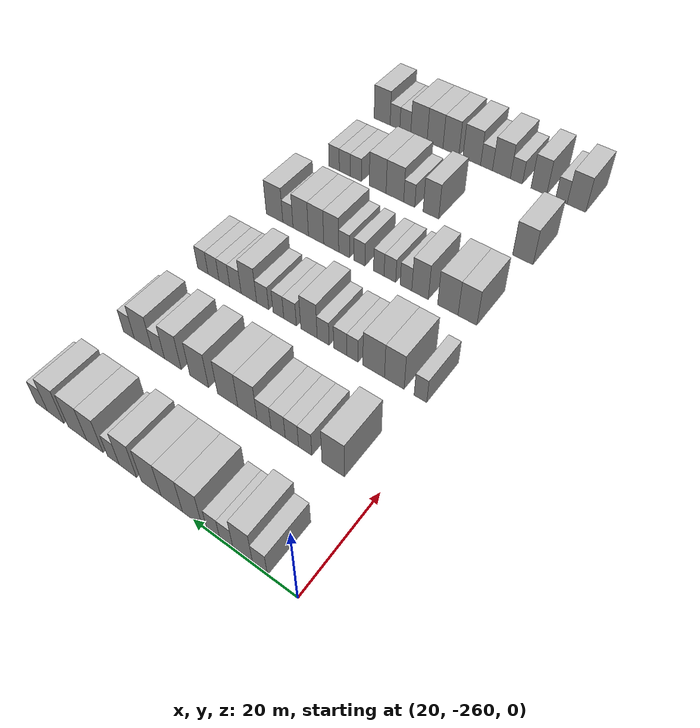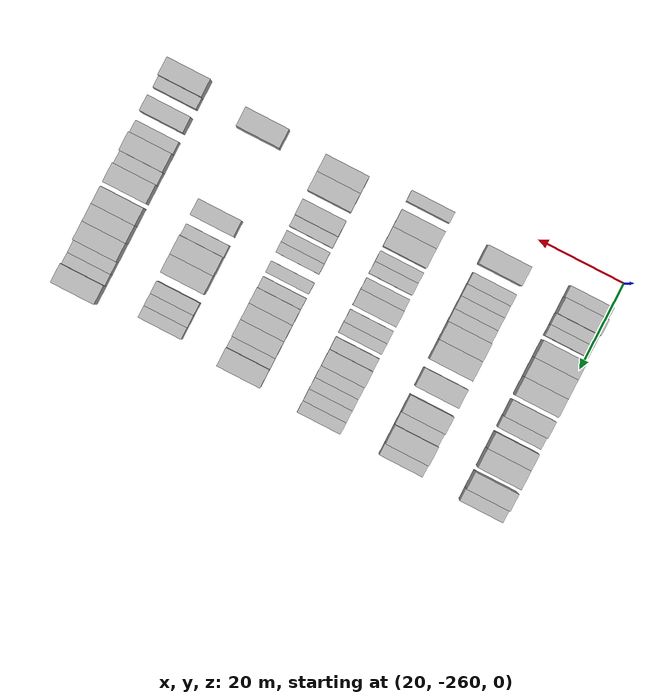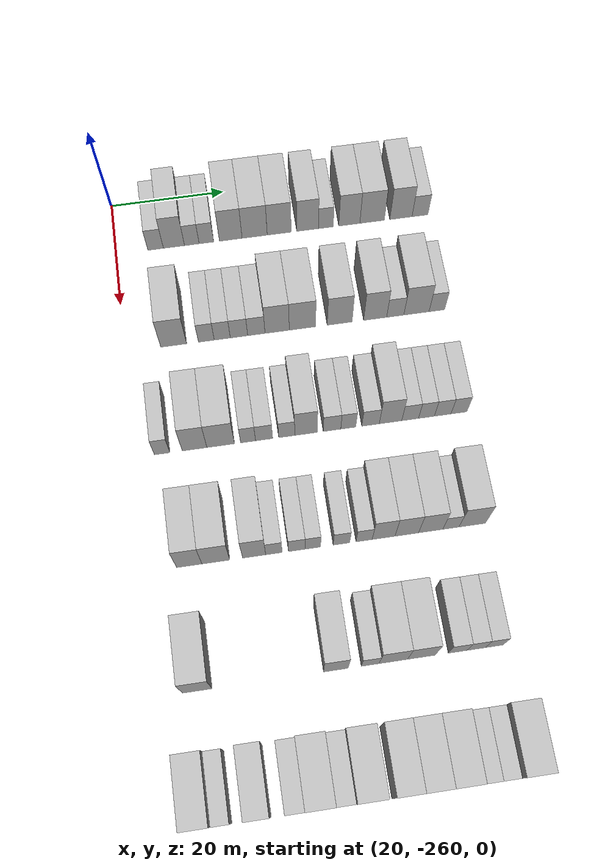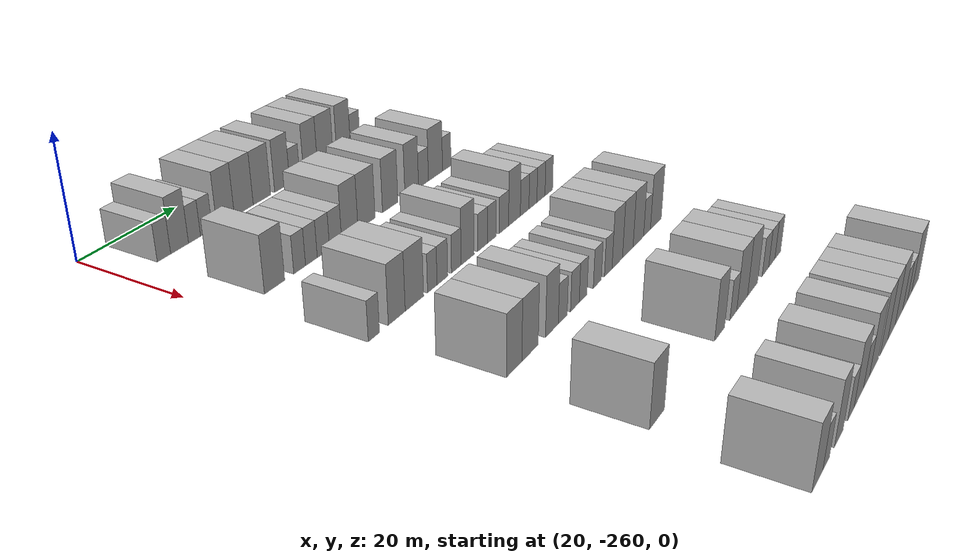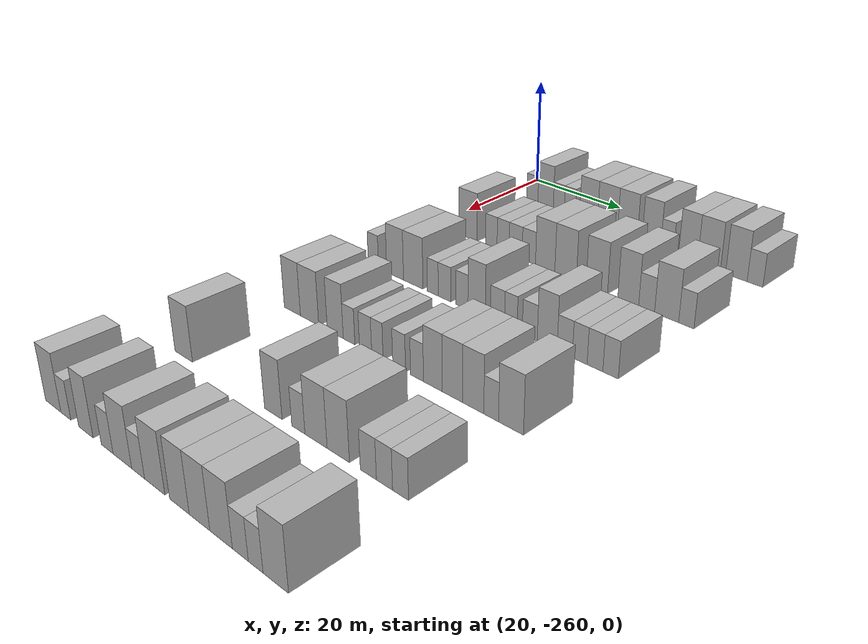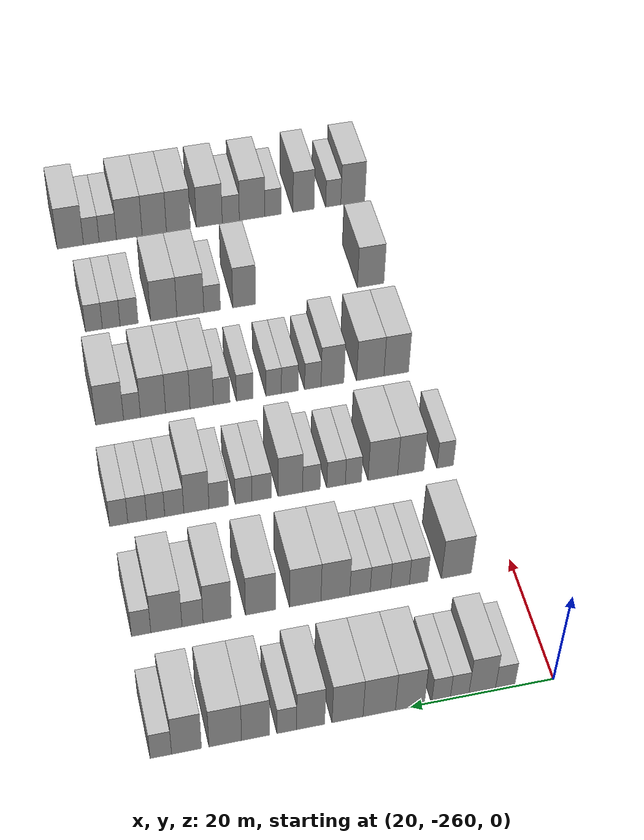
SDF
<sdf version="1.6">
 <world name="default">
  <model name="building_26">
   <static>1</static>
   <pose>25.0000 -253.0613 0 0.000000 0.000000 0.000000</pose>
   <link name="link">
    <pose>0 0 3.00 0 0 0</pose>
    <collision name="collision"><geometry><box><size>10.0000 2.7201 6.0000</size></box></geometry></collision>
    <visual name="visual">
     <cast_shadows>0</cast_shadows>
     <geometry><box><size>10.0000 2.7201 6.0000</size></box></geometry>
     <material>
      <script>
       <uri>model://HANNAS_wall/materials/scripts</uri>
       <uri>model://HANNAS_wall/materials/textures</uri>
       <name>vrc/HANNAS_wall</name>
      </script>
     </material>
    </visual>
   </link>
  </model>
  <model name="building_27">
   <static>1</static>
   <pose>25.0000 -249.8507 0 0.000000 0.000000 0.000000</pose>
   <link name="link">
    <pose>0 0 4.50 0 0 0</pose>
    <collision name="collision"><geometry><box><size>10.0000 3.7010 9.0000</size></box></geometry></collision>
    <visual name="visual">
     <cast_shadows>0</cast_shadows>
     <geometry><box><size>10.0000 3.7010 9.0000</size></box></geometry>
     <material>
      <script>
       <uri>model://HANNAS_wall/materials/scripts</uri>
       <uri>model://HANNAS_wall/materials/textures</uri>
       <name>vrc/HANNAS_wall</name>
      </script>
     </material>
    </visual>
   </link>
  </model>
  <model name="building_28">
   <static>1</static>
   <pose>25.0000 -246.7111 0 0.000000 0.000000 0.000000</pose>
   <link name="link">
    <pose>0 0 3.00 0 0 0</pose>
    <collision name="collision"><geometry><box><size>10.0000 2.5782 6.0000</size></box></geometry></collision>
    <visual name="visual">
     <cast_shadows>0</cast_shadows>
     <geometry><box><size>10.0000 2.5782 6.0000</size></box></geometry>
     <material>
      <script>
       <uri>model://HANNAS_wall/materials/scripts</uri>
       <uri>model://HANNAS_wall/materials/textures</uri>
       <name>vrc/HANNAS_wall</name>
      </script>
     </material>
    </visual>
   </link>
  </model>
  <model name="building_29">
   <static>1</static>
   <pose>25.0000 -244.1394 0 0.000000 0.000000 0.000000</pose>
   <link name="link">
    <pose>0 0 3.00 0 0 0</pose>
    <collision name="collision"><geometry><box><size>10.0000 2.5652 6.0000</size></box></geometry></collision>
    <visual name="visual">
     <cast_shadows>0</cast_shadows>
     <geometry><box><size>10.0000 2.5652 6.0000</size></box></geometry>
     <material>
      <script>
       <uri>model://HANNAS_wall/materials/scripts</uri>
       <uri>model://HANNAS_wall/materials/textures</uri>
       <name>vrc/HANNAS_wall</name>
      </script>
     </material>
    </visual>
   </link>
  </model>
  <model name="building_30">
   <static>1</static>
   <pose>25.0000 -239.8567 0 0.000000 0.000000 0.000000</pose>
   <link name="link">
    <pose>0 0 4.50 0 0 0</pose>
    <collision name="collision"><geometry><box><size>10.0000 4.0002 9.0000</size></box></geometry></collision>
    <visual name="visual">
     <cast_shadows>0</cast_shadows>
     <geometry><box><size>10.0000 4.0002 9.0000</size></box></geometry>
     <material>
      <script>
       <uri>model://HANNAS_wall/materials/scripts</uri>
       <uri>model://HANNAS_wall/materials/textures</uri>
       <name>vrc/HANNAS_wall</name>
      </script>
     </material>
    </visual>
   </link>
  </model>
  <model name="building_31">
   <static>1</static>
   <pose>25.0000 -235.6305 0 0.000000 0.000000 0.000000</pose>
   <link name="link">
    <pose>0 0 4.50 0 0 0</pose>
    <collision name="collision"><geometry><box><size>10.0000 4.4523 9.0000</size></box></geometry></collision>
    <visual name="visual">
     <cast_shadows>0</cast_shadows>
     <geometry><box><size>10.0000 4.4523 9.0000</size></box></geometry>
     <material>
      <script>
       <uri>model://HANNAS_wall/materials/scripts</uri>
       <uri>model://HANNAS_wall/materials/textures</uri>
       <name>vrc/HANNAS_wall</name>
      </script>
     </material>
    </visual>
   </link>
  </model>
  <model name="building_32">
   <static>1</static>
   <pose>25.0000 -231.2841 0 0.000000 0.000000 0.000000</pose>
   <link name="link">
    <pose>0 0 4.50 0 0 0</pose>
    <collision name="collision"><geometry><box><size>10.0000 4.2404 9.0000</size></box></geometry></collision>
    <visual name="visual">
     <cast_shadows>0</cast_shadows>
     <geometry><box><size>10.0000 4.2404 9.0000</size></box></geometry>
     <material>
      <script>
       <uri>model://HANNAS_wall/materials/scripts</uri>
       <uri>model://HANNAS_wall/materials/textures</uri>
       <name>vrc/HANNAS_wall</name>
      </script>
     </material>
    </visual>
   </link>
  </model>
  <model name="building_33">
   <static>1</static>
   <pose>25.0000 -226.2432 0 0.000000 0.000000 0.000000</pose>
   <link name="link">
    <pose>0 0 4.50 0 0 0</pose>
    <collision name="collision"><geometry><box><size>10.0000 3.8416 9.0000</size></box></geometry></collision>
    <visual name="visual">
     <cast_shadows>0</cast_shadows>
     <geometry><box><size>10.0000 3.8416 9.0000</size></box></geometry>
     <material>
      <script>
       <uri>model://HANNAS_wall/materials/scripts</uri>
       <uri>model://HANNAS_wall/materials/textures</uri>
       <name>vrc/HANNAS_wall</name>
      </script>
     </material>
    </visual>
   </link>
  </model>
  <model name="building_34">
   <static>1</static>
   <pose>25.0000 -223.0038 0 0.000000 0.000000 0.000000</pose>
   <link name="link">
    <pose>0 0 3.00 0 0 0</pose>
    <collision name="collision"><geometry><box><size>10.0000 2.6371 6.0000</size></box></geometry></collision>
    <visual name="visual">
     <cast_shadows>0</cast_shadows>
     <geometry><box><size>10.0000 2.6371 6.0000</size></box></geometry>
     <material>
      <script>
       <uri>model://HANNAS_wall/materials/scripts</uri>
       <uri>model://HANNAS_wall/materials/textures</uri>
       <name>vrc/HANNAS_wall</name>
      </script>
     </material>
    </visual>
   </link>
  </model>
  <model name="building_35">
   <static>1</static>
   <pose>25.0000 -218.8043 0 0.000000 0.000000 0.000000</pose>
   <link name="link">
    <pose>0 0 4.50 0 0 0</pose>
    <collision name="collision"><geometry><box><size>10.0000 3.7618 9.0000</size></box></geometry></collision>
    <visual name="visual">
     <cast_shadows>0</cast_shadows>
     <geometry><box><size>10.0000 3.7618 9.0000</size></box></geometry>
     <material>
      <script>
       <uri>model://HANNAS_wall/materials/scripts</uri>
       <uri>model://HANNAS_wall/materials/textures</uri>
       <name>vrc/HANNAS_wall</name>
      </script>
     </material>
    </visual>
   </link>
  </model>
  <model name="building_36">
   <static>1</static>
   <pose>25.0000 -214.7359 0 0.000000 0.000000 0.000000</pose>
   <link name="link">
    <pose>0 0 4.50 0 0 0</pose>
    <collision name="collision"><geometry><box><size>10.0000 4.3752 9.0000</size></box></geometry></collision>
    <visual name="visual">
     <cast_shadows>0</cast_shadows>
     <geometry><box><size>10.0000 4.3752 9.0000</size></box></geometry>
     <material>
      <script>
       <uri>model://HANNAS_wall/materials/scripts</uri>
       <uri>model://HANNAS_wall/materials/textures</uri>
       <name>vrc/HANNAS_wall</name>
      </script>
     </material>
    </visual>
   </link>
  </model>
  <model name="building_37">
   <static>1</static>
   <pose>25.0000 -209.5560 0 0.000000 0.000000 0.000000</pose>
   <link name="link">
    <pose>0 0 4.50 0 0 0</pose>
    <collision name="collision"><geometry><box><size>10.0000 3.9845 9.0000</size></box></geometry></collision>
    <visual name="visual">
     <cast_shadows>0</cast_shadows>
     <geometry><box><size>10.0000 3.9845 9.0000</size></box></geometry>
     <material>
      <script>
       <uri>model://HANNAS_wall/materials/scripts</uri>
       <uri>model://HANNAS_wall/materials/textures</uri>
       <name>vrc/HANNAS_wall</name>
      </script>
     </material>
    </visual>
   </link>
  </model>
  <model name="building_38">
   <static>1</static>
   <pose>25.0000 -206.1388 0 0.000000 0.000000 0.000000</pose>
   <link name="link">
    <pose>0 0 3.00 0 0 0</pose>
    <collision name="collision"><geometry><box><size>10.0000 2.8499 6.0000</size></box></geometry></collision>
    <visual name="visual">
     <cast_shadows>0</cast_shadows>
     <geometry><box><size>10.0000 2.8499 6.0000</size></box></geometry>
     <material>
      <script>
       <uri>model://HANNAS_wall/materials/scripts</uri>
       <uri>model://HANNAS_wall/materials/textures</uri>
       <name>vrc/HANNAS_wall</name>
      </script>
     </material>
    </visual>
   </link>
  </model>
  <model name="building_193">
   <static>1</static>
   <pose>44.0000 -251.8077 0 0.000000 0.000000 0.000000</pose>
   <link name="link">
    <pose>0 0 4.50 0 0 0</pose>
    <collision name="collision"><geometry><box><size>10.0000 4.3728 9.0000</size></box></geometry></collision>
    <visual name="visual">
     <cast_shadows>0</cast_shadows>
     <geometry><box><size>10.0000 4.3728 9.0000</size></box></geometry>
     <material>
      <script>
       <uri>model://HANNAS_wall/materials/scripts</uri>
       <uri>model://HANNAS_wall/materials/textures</uri>
       <name>vrc/HANNAS_wall</name>
      </script>
     </material>
    </visual>
   </link>
  </model>
  <model name="building_194">
   <static>1</static>
   <pose>44.0000 -246.2846 0 0.000000 0.000000 0.000000</pose>
   <link name="link">
    <pose>0 0 3.00 0 0 0</pose>
    <collision name="collision"><geometry><box><size>10.0000 2.6734 6.0000</size></box></geometry></collision>
    <visual name="visual">
     <cast_shadows>0</cast_shadows>
     <geometry><box><size>10.0000 2.6734 6.0000</size></box></geometry>
     <material>
      <script>
       <uri>model://HANNAS_wall/materials/scripts</uri>
       <uri>model://HANNAS_wall/materials/textures</uri>
       <name>vrc/HANNAS_wall</name>
      </script>
     </material>
    </visual>
   </link>
  </model>
  <model name="building_195">
   <static>1</static>
   <pose>44.0000 -243.5870 0 0.000000 0.000000 0.000000</pose>
   <link name="link">
    <pose>0 0 3.00 0 0 0</pose>
    <collision name="collision"><geometry><box><size>10.0000 2.7219 6.0000</size></box></geometry></collision>
    <visual name="visual">
     <cast_shadows>0</cast_shadows>
     <geometry><box><size>10.0000 2.7219 6.0000</size></box></geometry>
     <material>
      <script>
       <uri>model://HANNAS_wall/materials/scripts</uri>
       <uri>model://HANNAS_wall/materials/textures</uri>
       <name>vrc/HANNAS_wall</name>
      </script>
     </material>
    </visual>
   </link>
  </model>
  <model name="building_196">
   <static>1</static>
   <pose>44.0000 -240.7536 0 0.000000 0.000000 0.000000</pose>
   <link name="link">
    <pose>0 0 3.00 0 0 0</pose>
    <collision name="collision"><geometry><box><size>10.0000 2.9448 6.0000</size></box></geometry></collision>
    <visual name="visual">
     <cast_shadows>0</cast_shadows>
     <geometry><box><size>10.0000 2.9448 6.0000</size></box></geometry>
     <material>
      <script>
       <uri>model://HANNAS_wall/materials/scripts</uri>
       <uri>model://HANNAS_wall/materials/textures</uri>
       <name>vrc/HANNAS_wall</name>
      </script>
     </material>
    </visual>
   </link>
  </model>
  <model name="building_197">
   <static>1</static>
   <pose>44.0000 -237.8079 0 0.000000 0.000000 0.000000</pose>
   <link name="link">
    <pose>0 0 3.00 0 0 0</pose>
    <collision name="collision"><geometry><box><size>10.0000 2.9467 6.0000</size></box></geometry></collision>
    <visual name="visual">
     <cast_shadows>0</cast_shadows>
     <geometry><box><size>10.0000 2.9467 6.0000</size></box></geometry>
     <material>
      <script>
       <uri>model://HANNAS_wall/materials/scripts</uri>
       <uri>model://HANNAS_wall/materials/textures</uri>
       <name>vrc/HANNAS_wall</name>
      </script>
     </material>
    </visual>
   </link>
  </model>
  <model name="building_198">
   <static>1</static>
   <pose>44.0000 -234.2628 0 0.000000 0.000000 0.000000</pose>
   <link name="link">
    <pose>0 0 4.50 0 0 0</pose>
    <collision name="collision"><geometry><box><size>10.0000 4.1434 9.0000</size></box></geometry></collision>
    <visual name="visual">
     <cast_shadows>0</cast_shadows>
     <geometry><box><size>10.0000 4.1434 9.0000</size></box></geometry>
     <material>
      <script>
       <uri>model://HANNAS_wall/materials/scripts</uri>
       <uri>model://HANNAS_wall/materials/textures</uri>
       <name>vrc/HANNAS_wall</name>
      </script>
     </material>
    </visual>
   </link>
  </model>
  <model name="building_199">
   <static>1</static>
   <pose>44.0000 -229.9495 0 0.000000 0.000000 0.000000</pose>
   <link name="link">
    <pose>0 0 4.50 0 0 0</pose>
    <collision name="collision"><geometry><box><size>10.0000 4.4833 9.0000</size></box></geometry></collision>
    <visual name="visual">
     <cast_shadows>0</cast_shadows>
     <geometry><box><size>10.0000 4.4833 9.0000</size></box></geometry>
     <material>
      <script>
       <uri>model://HANNAS_wall/materials/scripts</uri>
       <uri>model://HANNAS_wall/materials/textures</uri>
       <name>vrc/HANNAS_wall</name>
      </script>
     </material>
    </visual>
   </link>
  </model>
  <model name="building_200">
   <static>1</static>
   <pose>44.0000 -223.5775 0 0.000000 0.000000 0.000000</pose>
   <link name="link">
    <pose>0 0 4.50 0 0 0</pose>
    <collision name="collision"><geometry><box><size>10.0000 4.2605 9.0000</size></box></geometry></collision>
    <visual name="visual">
     <cast_shadows>0</cast_shadows>
     <geometry><box><size>10.0000 4.2605 9.0000</size></box></geometry>
     <material>
      <script>
       <uri>model://HANNAS_wall/materials/scripts</uri>
       <uri>model://HANNAS_wall/materials/textures</uri>
       <name>vrc/HANNAS_wall</name>
      </script>
     </material>
    </visual>
   </link>
  </model>
  <model name="building_201">
   <static>1</static>
   <pose>44.0000 -217.4639 0 0.000000 0.000000 0.000000</pose>
   <link name="link">
    <pose>0 0 4.50 0 0 0</pose>
    <collision name="collision"><geometry><box><size>10.0000 3.9667 9.0000</size></box></geometry></collision>
    <visual name="visual">
     <cast_shadows>0</cast_shadows>
     <geometry><box><size>10.0000 3.9667 9.0000</size></box></geometry>
     <material>
      <script>
       <uri>model://HANNAS_wall/materials/scripts</uri>
       <uri>model://HANNAS_wall/materials/textures</uri>
       <name>vrc/HANNAS_wall</name>
      </script>
     </material>
    </visual>
   </link>
  </model>
  <model name="building_202">
   <static>1</static>
   <pose>44.0000 -213.9979 0 0.000000 0.000000 0.000000</pose>
   <link name="link">
    <pose>0 0 3.00 0 0 0</pose>
    <collision name="collision"><geometry><box><size>10.0000 2.9653 6.0000</size></box></geometry></collision>
    <visual name="visual">
     <cast_shadows>0</cast_shadows>
     <geometry><box><size>10.0000 2.9653 6.0000</size></box></geometry>
     <material>
      <script>
       <uri>model://HANNAS_wall/materials/scripts</uri>
       <uri>model://HANNAS_wall/materials/textures</uri>
       <name>vrc/HANNAS_wall</name>
      </script>
     </material>
    </visual>
   </link>
  </model>
  <model name="building_203">
   <static>1</static>
   <pose>44.0000 -210.3401 0 0.000000 0.000000 0.000000</pose>
   <link name="link">
    <pose>0 0 4.50 0 0 0</pose>
    <collision name="collision"><geometry><box><size>10.0000 4.3504 9.0000</size></box></geometry></collision>
    <visual name="visual">
     <cast_shadows>0</cast_shadows>
     <geometry><box><size>10.0000 4.3504 9.0000</size></box></geometry>
     <material>
      <script>
       <uri>model://HANNAS_wall/materials/scripts</uri>
       <uri>model://HANNAS_wall/materials/textures</uri>
       <name>vrc/HANNAS_wall</name>
      </script>
     </material>
    </visual>
   </link>
  </model>
  <model name="building_204">
   <static>1</static>
   <pose>44.0000 -206.8149 0 0.000000 0.000000 0.000000</pose>
   <link name="link">
    <pose>0 0 3.00 0 0 0</pose>
    <collision name="collision"><geometry><box><size>10.0000 2.6998 6.0000</size></box></geometry></collision>
    <visual name="visual">
     <cast_shadows>0</cast_shadows>
     <geometry><box><size>10.0000 2.6998 6.0000</size></box></geometry>
     <material>
      <script>
       <uri>model://HANNAS_wall/materials/scripts</uri>
       <uri>model://HANNAS_wall/materials/textures</uri>
       <name>vrc/HANNAS_wall</name>
      </script>
     </material>
    </visual>
   </link>
  </model>
  <model name="building_365">
   <static>1</static>
   <pose>63.0000 -255.5866 0 0.000000 0.000000 0.000000</pose>
   <link name="link">
    <pose>0 0 3.00 0 0 0</pose>
    <collision name="collision"><geometry><box><size>10.0000 2.5113 6.0000</size></box></geometry></collision>
    <visual name="visual">
     <cast_shadows>0</cast_shadows>
     <geometry><box><size>10.0000 2.5113 6.0000</size></box></geometry>
     <material>
      <script>
       <uri>model://HANNAS_wall/materials/scripts</uri>
       <uri>model://HANNAS_wall/materials/textures</uri>
       <name>vrc/HANNAS_wall</name>
      </script>
     </material>
    </visual>
   </link>
  </model>
  <model name="building_366">
   <static>1</static>
   <pose>63.0000 -250.3341 0 0.000000 0.000000 0.000000</pose>
   <link name="link">
    <pose>0 0 4.50 0 0 0</pose>
    <collision name="collision"><geometry><box><size>10.0000 3.9937 9.0000</size></box></geometry></collision>
    <visual name="visual">
     <cast_shadows>0</cast_shadows>
     <geometry><box><size>10.0000 3.9937 9.0000</size></box></geometry>
     <material>
      <script>
       <uri>model://HANNAS_wall/materials/scripts</uri>
       <uri>model://HANNAS_wall/materials/textures</uri>
       <name>vrc/HANNAS_wall</name>
      </script>
     </material>
    </visual>
   </link>
  </model>
  <model name="building_367">
   <static>1</static>
   <pose>63.0000 -246.0889 0 0.000000 0.000000 0.000000</pose>
   <link name="link">
    <pose>0 0 4.50 0 0 0</pose>
    <collision name="collision"><geometry><box><size>10.0000 4.4967 9.0000</size></box></geometry></collision>
    <visual name="visual">
     <cast_shadows>0</cast_shadows>
     <geometry><box><size>10.0000 4.4967 9.0000</size></box></geometry>
     <material>
      <script>
       <uri>model://HANNAS_wall/materials/scripts</uri>
       <uri>model://HANNAS_wall/materials/textures</uri>
       <name>vrc/HANNAS_wall</name>
      </script>
     </material>
    </visual>
   </link>
  </model>
  <model name="building_368">
   <static>1</static>
   <pose>63.0000 -241.6227 0 0.000000 0.000000 0.000000</pose>
   <link name="link">
    <pose>0 0 3.00 0 0 0</pose>
    <collision name="collision"><geometry><box><size>10.0000 2.4357 6.0000</size></box></geometry></collision>
    <visual name="visual">
     <cast_shadows>0</cast_shadows>
     <geometry><box><size>10.0000 2.4357 6.0000</size></box></geometry>
     <material>
      <script>
       <uri>model://HANNAS_wall/materials/scripts</uri>
       <uri>model://HANNAS_wall/materials/textures</uri>
       <name>vrc/HANNAS_wall</name>
      </script>
     </material>
    </visual>
   </link>
  </model>
  <model name="building_369">
   <static>1</static>
   <pose>63.0000 -239.0105 0 0.000000 0.000000 0.000000</pose>
   <link name="link">
    <pose>0 0 3.00 0 0 0</pose>
    <collision name="collision"><geometry><box><size>10.0000 2.7888 6.0000</size></box></geometry></collision>
    <visual name="visual">
     <cast_shadows>0</cast_shadows>
     <geometry><box><size>10.0000 2.7888 6.0000</size></box></geometry>
     <material>
      <script>
       <uri>model://HANNAS_wall/materials/scripts</uri>
       <uri>model://HANNAS_wall/materials/textures</uri>
       <name>vrc/HANNAS_wall</name>
      </script>
     </material>
    </visual>
   </link>
  </model>
  <model name="building_370">
   <static>1</static>
   <pose>63.0000 -235.3000 0 0.000000 0.000000 0.000000</pose>
   <link name="link">
    <pose>0 0 3.00 0 0 0</pose>
    <collision name="collision"><geometry><box><size>10.0000 2.6323 6.0000</size></box></geometry></collision>
    <visual name="visual">
     <cast_shadows>0</cast_shadows>
     <geometry><box><size>10.0000 2.6323 6.0000</size></box></geometry>
     <material>
      <script>
       <uri>model://HANNAS_wall/materials/scripts</uri>
       <uri>model://HANNAS_wall/materials/textures</uri>
       <name>vrc/HANNAS_wall</name>
      </script>
     </material>
    </visual>
   </link>
  </model>
  <model name="building_371">
   <static>1</static>
   <pose>63.0000 -232.1525 0 0.000000 0.000000 0.000000</pose>
   <link name="link">
    <pose>0 0 4.50 0 0 0</pose>
    <collision name="collision"><geometry><box><size>10.0000 3.6627 9.0000</size></box></geometry></collision>
    <visual name="visual">
     <cast_shadows>0</cast_shadows>
     <geometry><box><size>10.0000 3.6627 9.0000</size></box></geometry>
     <material>
      <script>
       <uri>model://HANNAS_wall/materials/scripts</uri>
       <uri>model://HANNAS_wall/materials/textures</uri>
       <name>vrc/HANNAS_wall</name>
      </script>
     </material>
    </visual>
   </link>
  </model>
  <model name="building_372">
   <static>1</static>
   <pose>63.0000 -227.8747 0 0.000000 0.000000 0.000000</pose>
   <link name="link">
    <pose>0 0 3.00 0 0 0</pose>
    <collision name="collision"><geometry><box><size>10.0000 2.8930 6.0000</size></box></geometry></collision>
    <visual name="visual">
     <cast_shadows>0</cast_shadows>
     <geometry><box><size>10.0000 2.8930 6.0000</size></box></geometry>
     <material>
      <script>
       <uri>model://HANNAS_wall/materials/scripts</uri>
       <uri>model://HANNAS_wall/materials/textures</uri>
       <name>vrc/HANNAS_wall</name>
      </script>
     </material>
    </visual>
   </link>
  </model>
  <model name="building_373">
   <static>1</static>
   <pose>63.0000 -225.1931 0 0.000000 0.000000 0.000000</pose>
   <link name="link">
    <pose>0 0 3.00 0 0 0</pose>
    <collision name="collision"><geometry><box><size>10.0000 2.4701 6.0000</size></box></geometry></collision>
    <visual name="visual">
     <cast_shadows>0</cast_shadows>
     <geometry><box><size>10.0000 2.4701 6.0000</size></box></geometry>
     <material>
      <script>
       <uri>model://HANNAS_wall/materials/scripts</uri>
       <uri>model://HANNAS_wall/materials/textures</uri>
       <name>vrc/HANNAS_wall</name>
      </script>
     </material>
    </visual>
   </link>
  </model>
  <model name="building_374">
   <static>1</static>
   <pose>63.0000 -221.5161 0 0.000000 0.000000 0.000000</pose>
   <link name="link">
    <pose>0 0 3.00 0 0 0</pose>
    <collision name="collision"><geometry><box><size>10.0000 2.8840 6.0000</size></box></geometry></collision>
    <visual name="visual">
     <cast_shadows>0</cast_shadows>
     <geometry><box><size>10.0000 2.8840 6.0000</size></box></geometry>
     <material>
      <script>
       <uri>model://HANNAS_wall/materials/scripts</uri>
       <uri>model://HANNAS_wall/materials/textures</uri>
       <name>vrc/HANNAS_wall</name>
      </script>
     </material>
    </visual>
   </link>
  </model>
  <model name="building_375">
   <static>1</static>
   <pose>63.0000 -218.2141 0 0.000000 0.000000 0.000000</pose>
   <link name="link">
    <pose>0 0 4.50 0 0 0</pose>
    <collision name="collision"><geometry><box><size>10.0000 3.7201 9.0000</size></box></geometry></collision>
    <visual name="visual">
     <cast_shadows>0</cast_shadows>
     <geometry><box><size>10.0000 3.7201 9.0000</size></box></geometry>
     <material>
      <script>
       <uri>model://HANNAS_wall/materials/scripts</uri>
       <uri>model://HANNAS_wall/materials/textures</uri>
       <name>vrc/HANNAS_wall</name>
      </script>
     </material>
    </visual>
   </link>
  </model>
  <model name="building_376">
   <static>1</static>
   <pose>63.0000 -214.9569 0 0.000000 0.000000 0.000000</pose>
   <link name="link">
    <pose>0 0 3.00 0 0 0</pose>
    <collision name="collision"><geometry><box><size>10.0000 2.7943 6.0000</size></box></geometry></collision>
    <visual name="visual">
     <cast_shadows>0</cast_shadows>
     <geometry><box><size>10.0000 2.7943 6.0000</size></box></geometry>
     <material>
      <script>
       <uri>model://HANNAS_wall/materials/scripts</uri>
       <uri>model://HANNAS_wall/materials/textures</uri>
       <name>vrc/HANNAS_wall</name>
      </script>
     </material>
    </visual>
   </link>
  </model>
  <model name="building_377">
   <static>1</static>
   <pose>63.0000 -212.2376 0 0.000000 0.000000 0.000000</pose>
   <link name="link">
    <pose>0 0 3.00 0 0 0</pose>
    <collision name="collision"><geometry><box><size>10.0000 2.6442 6.0000</size></box></geometry></collision>
    <visual name="visual">
     <cast_shadows>0</cast_shadows>
     <geometry><box><size>10.0000 2.6442 6.0000</size></box></geometry>
     <material>
      <script>
       <uri>model://HANNAS_wall/materials/scripts</uri>
       <uri>model://HANNAS_wall/materials/textures</uri>
       <name>vrc/HANNAS_wall</name>
      </script>
     </material>
    </visual>
   </link>
  </model>
  <model name="building_378">
   <static>1</static>
   <pose>63.0000 -209.5373 0 0.000000 0.000000 0.000000</pose>
   <link name="link">
    <pose>0 0 3.00 0 0 0</pose>
    <collision name="collision"><geometry><box><size>10.0000 2.7564 6.0000</size></box></geometry></collision>
    <visual name="visual">
     <cast_shadows>0</cast_shadows>
     <geometry><box><size>10.0000 2.7564 6.0000</size></box></geometry>
     <material>
      <script>
       <uri>model://HANNAS_wall/materials/scripts</uri>
       <uri>model://HANNAS_wall/materials/textures</uri>
       <name>vrc/HANNAS_wall</name>
      </script>
     </material>
    </visual>
   </link>
  </model>
  <model name="building_379">
   <static>1</static>
   <pose>63.0000 -206.8328 0 0.000000 0.000000 0.000000</pose>
   <link name="link">
    <pose>0 0 3.00 0 0 0</pose>
    <collision name="collision"><geometry><box><size>10.0000 2.6526 6.0000</size></box></geometry></collision>
    <visual name="visual">
     <cast_shadows>0</cast_shadows>
     <geometry><box><size>10.0000 2.6526 6.0000</size></box></geometry>
     <material>
      <script>
       <uri>model://HANNAS_wall/materials/scripts</uri>
       <uri>model://HANNAS_wall/materials/textures</uri>
       <name>vrc/HANNAS_wall</name>
      </script>
     </material>
    </visual>
   </link>
  </model>
  <model name="building_538">
   <static>1</static>
   <pose>82.0000 -253.2008 0 0.000000 0.000000 0.000000</pose>
   <link name="link">
    <pose>0 0 4.50 0 0 0</pose>
    <collision name="collision"><geometry><box><size>10.0000 3.9263 9.0000</size></box></geometry></collision>
    <visual name="visual">
     <cast_shadows>0</cast_shadows>
     <geometry><box><size>10.0000 3.9263 9.0000</size></box></geometry>
     <material>
      <script>
       <uri>model://HANNAS_wall/materials/scripts</uri>
       <uri>model://HANNAS_wall/materials/textures</uri>
       <name>vrc/HANNAS_wall</name>
      </script>
     </material>
    </visual>
   </link>
  </model>
  <model name="building_539">
   <static>1</static>
   <pose>82.0000 -249.0685 0 0.000000 0.000000 0.000000</pose>
   <link name="link">
    <pose>0 0 4.50 0 0 0</pose>
    <collision name="collision"><geometry><box><size>10.0000 4.3383 9.0000</size></box></geometry></collision>
    <visual name="visual">
     <cast_shadows>0</cast_shadows>
     <geometry><box><size>10.0000 4.3383 9.0000</size></box></geometry>
     <material>
      <script>
       <uri>model://HANNAS_wall/materials/scripts</uri>
       <uri>model://HANNAS_wall/materials/textures</uri>
       <name>vrc/HANNAS_wall</name>
      </script>
     </material>
    </visual>
   </link>
  </model>
  <model name="building_540">
   <static>1</static>
   <pose>82.0000 -243.0919 0 0.000000 0.000000 0.000000</pose>
   <link name="link">
    <pose>0 0 4.50 0 0 0</pose>
    <collision name="collision"><geometry><box><size>10.0000 3.6150 9.0000</size></box></geometry></collision>
    <visual name="visual">
     <cast_shadows>0</cast_shadows>
     <geometry><box><size>10.0000 3.6150 9.0000</size></box></geometry>
     <material>
      <script>
       <uri>model://HANNAS_wall/materials/scripts</uri>
       <uri>model://HANNAS_wall/materials/textures</uri>
       <name>vrc/HANNAS_wall</name>
      </script>
     </material>
    </visual>
   </link>
  </model>
  <model name="building_541">
   <static>1</static>
   <pose>82.0000 -239.9960 0 0.000000 0.000000 0.000000</pose>
   <link name="link">
    <pose>0 0 3.00 0 0 0</pose>
    <collision name="collision"><geometry><box><size>10.0000 2.5768 6.0000</size></box></geometry></collision>
    <visual name="visual">
     <cast_shadows>0</cast_shadows>
     <geometry><box><size>10.0000 2.5768 6.0000</size></box></geometry>
     <material>
      <script>
       <uri>model://HANNAS_wall/materials/scripts</uri>
       <uri>model://HANNAS_wall/materials/textures</uri>
       <name>vrc/HANNAS_wall</name>
      </script>
     </material>
    </visual>
   </link>
  </model>
  <model name="building_542">
   <static>1</static>
   <pose>82.0000 -236.3950 0 0.000000 0.000000 0.000000</pose>
   <link name="link">
    <pose>0 0 3.00 0 0 0</pose>
    <collision name="collision"><geometry><box><size>10.0000 2.6253 6.0000</size></box></geometry></collision>
    <visual name="visual">
     <cast_shadows>0</cast_shadows>
     <geometry><box><size>10.0000 2.6253 6.0000</size></box></geometry>
     <material>
      <script>
       <uri>model://HANNAS_wall/materials/scripts</uri>
       <uri>model://HANNAS_wall/materials/textures</uri>
       <name>vrc/HANNAS_wall</name>
      </script>
     </material>
    </visual>
   </link>
  </model>
  <model name="building_543">
   <static>1</static>
   <pose>82.0000 -233.8790 0 0.000000 0.000000 0.000000</pose>
   <link name="link">
    <pose>0 0 3.00 0 0 0</pose>
    <collision name="collision"><geometry><box><size>10.0000 2.4067 6.0000</size></box></geometry></collision>
    <visual name="visual">
     <cast_shadows>0</cast_shadows>
     <geometry><box><size>10.0000 2.4067 6.0000</size></box></geometry>
     <material>
      <script>
       <uri>model://HANNAS_wall/materials/scripts</uri>
       <uri>model://HANNAS_wall/materials/textures</uri>
       <name>vrc/HANNAS_wall</name>
      </script>
     </material>
    </visual>
   </link>
  </model>
  <model name="building_544">
   <static>1</static>
   <pose>82.0000 -229.3748 0 0.000000 0.000000 0.000000</pose>
   <link name="link">
    <pose>0 0 3.00 0 0 0</pose>
    <collision name="collision"><geometry><box><size>10.0000 2.6017 6.0000</size></box></geometry></collision>
    <visual name="visual">
     <cast_shadows>0</cast_shadows>
     <geometry><box><size>10.0000 2.6017 6.0000</size></box></geometry>
     <material>
      <script>
       <uri>model://HANNAS_wall/materials/scripts</uri>
       <uri>model://HANNAS_wall/materials/textures</uri>
       <name>vrc/HANNAS_wall</name>
      </script>
     </material>
    </visual>
   </link>
  </model>
  <model name="building_545">
   <static>1</static>
   <pose>82.0000 -225.7969 0 0.000000 0.000000 0.000000</pose>
   <link name="link">
    <pose>0 0 3.00 0 0 0</pose>
    <collision name="collision"><geometry><box><size>10.0000 2.5540 6.0000</size></box></geometry></collision>
    <visual name="visual">
     <cast_shadows>0</cast_shadows>
     <geometry><box><size>10.0000 2.5540 6.0000</size></box></geometry>
     <material>
      <script>
       <uri>model://HANNAS_wall/materials/scripts</uri>
       <uri>model://HANNAS_wall/materials/textures</uri>
       <name>vrc/HANNAS_wall</name>
      </script>
     </material>
    </visual>
   </link>
  </model>
  <model name="building_546">
   <static>1</static>
   <pose>82.0000 -222.7163 0 0.000000 0.000000 0.000000</pose>
   <link name="link">
    <pose>0 0 4.50 0 0 0</pose>
    <collision name="collision"><geometry><box><size>10.0000 3.6074 9.0000</size></box></geometry></collision>
    <visual name="visual">
     <cast_shadows>0</cast_shadows>
     <geometry><box><size>10.0000 3.6074 9.0000</size></box></geometry>
     <material>
      <script>
       <uri>model://HANNAS_wall/materials/scripts</uri>
       <uri>model://HANNAS_wall/materials/textures</uri>
       <name>vrc/HANNAS_wall</name>
      </script>
     </material>
    </visual>
   </link>
  </model>
  <model name="building_547">
   <static>1</static>
   <pose>82.0000 -219.0309 0 0.000000 0.000000 0.000000</pose>
   <link name="link">
    <pose>0 0 4.50 0 0 0</pose>
    <collision name="collision"><geometry><box><size>10.0000 3.7633 9.0000</size></box></geometry></collision>
    <visual name="visual">
     <cast_shadows>0</cast_shadows>
     <geometry><box><size>10.0000 3.7633 9.0000</size></box></geometry>
     <material>
      <script>
       <uri>model://HANNAS_wall/materials/scripts</uri>
       <uri>model://HANNAS_wall/materials/textures</uri>
       <name>vrc/HANNAS_wall</name>
      </script>
     </material>
    </visual>
   </link>
  </model>
  <model name="building_548">
   <static>1</static>
   <pose>82.0000 -215.2178 0 0.000000 0.000000 0.000000</pose>
   <link name="link">
    <pose>0 0 4.50 0 0 0</pose>
    <collision name="collision"><geometry><box><size>10.0000 3.8630 9.0000</size></box></geometry></collision>
    <visual name="visual">
     <cast_shadows>0</cast_shadows>
     <geometry><box><size>10.0000 3.8630 9.0000</size></box></geometry>
     <material>
      <script>
       <uri>model://HANNAS_wall/materials/scripts</uri>
       <uri>model://HANNAS_wall/materials/textures</uri>
       <name>vrc/HANNAS_wall</name>
      </script>
     </material>
    </visual>
   </link>
  </model>
  <model name="building_549">
   <static>1</static>
   <pose>82.0000 -211.9939 0 0.000000 0.000000 0.000000</pose>
   <link name="link">
    <pose>0 0 3.00 0 0 0</pose>
    <collision name="collision"><geometry><box><size>10.0000 2.5848 6.0000</size></box></geometry></collision>
    <visual name="visual">
     <cast_shadows>0</cast_shadows>
     <geometry><box><size>10.0000 2.5848 6.0000</size></box></geometry>
     <material>
      <script>
       <uri>model://HANNAS_wall/materials/scripts</uri>
       <uri>model://HANNAS_wall/materials/textures</uri>
       <name>vrc/HANNAS_wall</name>
      </script>
     </material>
    </visual>
   </link>
  </model>
  <model name="building_550">
   <static>1</static>
   <pose>82.0000 -208.5768 0 0.000000 0.000000 0.000000</pose>
   <link name="link">
    <pose>0 0 4.50 0 0 0</pose>
    <collision name="collision"><geometry><box><size>10.0000 4.2495 9.0000</size></box></geometry></collision>
    <visual name="visual">
     <cast_shadows>0</cast_shadows>
     <geometry><box><size>10.0000 4.2495 9.0000</size></box></geometry>
     <material>
      <script>
       <uri>model://HANNAS_wall/materials/scripts</uri>
       <uri>model://HANNAS_wall/materials/textures</uri>
       <name>vrc/HANNAS_wall</name>
      </script>
     </material>
    </visual>
   </link>
  </model>
  <model name="building_720">
   <static>1</static>
   <pose>101.0000 -254.0223 0 0.000000 0.000000 0.000000</pose>
   <link name="link">
    <pose>0 0 4.50 0 0 0</pose>
    <collision name="collision"><geometry><box><size>10.0000 4.3876 9.0000</size></box></geometry></collision>
    <visual name="visual">
     <cast_shadows>0</cast_shadows>
     <geometry><box><size>10.0000 4.3876 9.0000</size></box></geometry>
     <material>
      <script>
       <uri>model://HANNAS_wall/materials/scripts</uri>
       <uri>model://HANNAS_wall/materials/textures</uri>
       <name>vrc/HANNAS_wall</name>
      </script>
     </material>
    </visual>
   </link>
  </model>
  <model name="building_721">
   <static>1</static>
   <pose>101.0000 -233.2763 0 0.000000 0.000000 0.000000</pose>
   <link name="link">
    <pose>0 0 4.50 0 0 0</pose>
    <collision name="collision"><geometry><box><size>10.0000 3.7015 9.0000</size></box></geometry></collision>
    <visual name="visual">
     <cast_shadows>0</cast_shadows>
     <geometry><box><size>10.0000 3.7015 9.0000</size></box></geometry>
     <material>
      <script>
       <uri>model://HANNAS_wall/materials/scripts</uri>
       <uri>model://HANNAS_wall/materials/textures</uri>
       <name>vrc/HANNAS_wall</name>
      </script>
     </material>
    </visual>
   </link>
  </model>
  <model name="building_722">
   <static>1</static>
   <pose>101.0000 -228.0852 0 0.000000 0.000000 0.000000</pose>
   <link name="link">
    <pose>0 0 3.00 0 0 0</pose>
    <collision name="collision"><geometry><box><size>10.0000 2.6807 6.0000</size></box></geometry></collision>
    <visual name="visual">
     <cast_shadows>0</cast_shadows>
     <geometry><box><size>10.0000 2.6807 6.0000</size></box></geometry>
     <material>
      <script>
       <uri>model://HANNAS_wall/materials/scripts</uri>
       <uri>model://HANNAS_wall/materials/textures</uri>
       <name>vrc/HANNAS_wall</name>
      </script>
     </material>
    </visual>
   </link>
  </model>
  <model name="building_723">
   <static>1</static>
   <pose>101.0000 -224.5764 0 0.000000 0.000000 0.000000</pose>
   <link name="link">
    <pose>0 0 4.50 0 0 0</pose>
    <collision name="collision"><geometry><box><size>10.0000 4.3369 9.0000</size></box></geometry></collision>
    <visual name="visual">
     <cast_shadows>0</cast_shadows>
     <geometry><box><size>10.0000 4.3369 9.0000</size></box></geometry>
     <material>
      <script>
       <uri>model://HANNAS_wall/materials/scripts</uri>
       <uri>model://HANNAS_wall/materials/textures</uri>
       <name>vrc/HANNAS_wall</name>
      </script>
     </material>
    </visual>
   </link>
  </model>
  <model name="building_724">
   <static>1</static>
   <pose>101.0000 -220.3008 0 0.000000 0.000000 0.000000</pose>
   <link name="link">
    <pose>0 0 4.50 0 0 0</pose>
    <collision name="collision"><geometry><box><size>10.0000 4.2144 9.0000</size></box></geometry></collision>
    <visual name="visual">
     <cast_shadows>0</cast_shadows>
     <geometry><box><size>10.0000 4.2144 9.0000</size></box></geometry>
     <material>
      <script>
       <uri>model://HANNAS_wall/materials/scripts</uri>
       <uri>model://HANNAS_wall/materials/textures</uri>
       <name>vrc/HANNAS_wall</name>
      </script>
     </material>
    </visual>
   </link>
  </model>
  <model name="building_725">
   <static>1</static>
   <pose>101.0000 -214.7543 0 0.000000 0.000000 0.000000</pose>
   <link name="link">
    <pose>0 0 3.00 0 0 0</pose>
    <collision name="collision"><geometry><box><size>10.0000 2.8786 6.0000</size></box></geometry></collision>
    <visual name="visual">
     <cast_shadows>0</cast_shadows>
     <geometry><box><size>10.0000 2.8786 6.0000</size></box></geometry>
     <material>
      <script>
       <uri>model://HANNAS_wall/materials/scripts</uri>
       <uri>model://HANNAS_wall/materials/textures</uri>
       <name>vrc/HANNAS_wall</name>
      </script>
     </material>
    </visual>
   </link>
  </model>
  <model name="building_726">
   <static>1</static>
   <pose>101.0000 -211.9051 0 0.000000 0.000000 0.000000</pose>
   <link name="link">
    <pose>0 0 3.00 0 0 0</pose>
    <collision name="collision"><geometry><box><size>10.0000 2.8196 6.0000</size></box></geometry></collision>
    <visual name="visual">
     <cast_shadows>0</cast_shadows>
     <geometry><box><size>10.0000 2.8196 6.0000</size></box></geometry>
     <material>
      <script>
       <uri>model://HANNAS_wall/materials/scripts</uri>
       <uri>model://HANNAS_wall/materials/textures</uri>
       <name>vrc/HANNAS_wall</name>
      </script>
     </material>
    </visual>
   </link>
  </model>
  <model name="building_727">
   <static>1</static>
   <pose>101.0000 -209.1427 0 0.000000 0.000000 0.000000</pose>
   <link name="link">
    <pose>0 0 3.00 0 0 0</pose>
    <collision name="collision"><geometry><box><size>10.0000 2.7052 6.0000</size></box></geometry></collision>
    <visual name="visual">
     <cast_shadows>0</cast_shadows>
     <geometry><box><size>10.0000 2.7052 6.0000</size></box></geometry>
     <material>
      <script>
       <uri>model://HANNAS_wall/materials/scripts</uri>
       <uri>model://HANNAS_wall/materials/textures</uri>
       <name>vrc/HANNAS_wall</name>
      </script>
     </material>
    </visual>
   </link>
  </model>
  <model name="building_894">
   <static>1</static>
   <pose>120.0000 -255.8414 0 0.000000 0.000000 0.000000</pose>
   <link name="link">
    <pose>0 0 4.50 0 0 0</pose>
    <collision name="collision"><geometry><box><size>10.0000 4.1251 9.0000</size></box></geometry></collision>
    <visual name="visual">
     <cast_shadows>0</cast_shadows>
     <geometry><box><size>10.0000 4.1251 9.0000</size></box></geometry>
     <material>
      <script>
       <uri>model://HANNAS_wall/materials/scripts</uri>
       <uri>model://HANNAS_wall/materials/textures</uri>
       <name>vrc/HANNAS_wall</name>
      </script>
     </material>
    </visual>
   </link>
  </model>
  <model name="building_895">
   <static>1</static>
   <pose>120.0000 -252.4779 0 0.000000 0.000000 0.000000</pose>
   <link name="link">
    <pose>0 0 3.00 0 0 0</pose>
    <collision name="collision"><geometry><box><size>10.0000 2.6019 6.0000</size></box></geometry></collision>
    <visual name="visual">
     <cast_shadows>0</cast_shadows>
     <geometry><box><size>10.0000 2.6019 6.0000</size></box></geometry>
     <material>
      <script>
       <uri>model://HANNAS_wall/materials/scripts</uri>
       <uri>model://HANNAS_wall/materials/textures</uri>
       <name>vrc/HANNAS_wall</name>
      </script>
     </material>
    </visual>
   </link>
  </model>
  <model name="building_896">
   <static>1</static>
   <pose>120.0000 -247.3694 0 0.000000 0.000000 0.000000</pose>
   <link name="link">
    <pose>0 0 4.50 0 0 0</pose>
    <collision name="collision"><geometry><box><size>10.0000 3.6150 9.0000</size></box></geometry></collision>
    <visual name="visual">
     <cast_shadows>0</cast_shadows>
     <geometry><box><size>10.0000 3.6150 9.0000</size></box></geometry>
     <material>
      <script>
       <uri>model://HANNAS_wall/materials/scripts</uri>
       <uri>model://HANNAS_wall/materials/textures</uri>
       <name>vrc/HANNAS_wall</name>
      </script>
     </material>
    </visual>
   </link>
  </model>
  <model name="building_897">
   <static>1</static>
   <pose>120.0000 -242.1523 0 0.000000 0.000000 0.000000</pose>
   <link name="link">
    <pose>0 0 3.00 0 0 0</pose>
    <collision name="collision"><geometry><box><size>10.0000 2.8192 6.0000</size></box></geometry></collision>
    <visual name="visual">
     <cast_shadows>0</cast_shadows>
     <geometry><box><size>10.0000 2.8192 6.0000</size></box></geometry>
     <material>
      <script>
       <uri>model://HANNAS_wall/materials/scripts</uri>
       <uri>model://HANNAS_wall/materials/textures</uri>
       <name>vrc/HANNAS_wall</name>
      </script>
     </material>
    </visual>
   </link>
  </model>
  <model name="building_898">
   <static>1</static>
   <pose>120.0000 -238.5999 0 0.000000 0.000000 0.000000</pose>
   <link name="link">
    <pose>0 0 4.50 0 0 0</pose>
    <collision name="collision"><geometry><box><size>10.0000 4.2856 9.0000</size></box></geometry></collision>
    <visual name="visual">
     <cast_shadows>0</cast_shadows>
     <geometry><box><size>10.0000 4.2856 9.0000</size></box></geometry>
     <material>
      <script>
       <uri>model://HANNAS_wall/materials/scripts</uri>
       <uri>model://HANNAS_wall/materials/textures</uri>
       <name>vrc/HANNAS_wall</name>
      </script>
     </material>
    </visual>
   </link>
  </model>
  <model name="building_899">
   <static>1</static>
   <pose>120.0000 -235.0120 0 0.000000 0.000000 0.000000</pose>
   <link name="link">
    <pose>0 0 3.00 0 0 0</pose>
    <collision name="collision"><geometry><box><size>10.0000 2.8904 6.0000</size></box></geometry></collision>
    <visual name="visual">
     <cast_shadows>0</cast_shadows>
     <geometry><box><size>10.0000 2.8904 6.0000</size></box></geometry>
     <material>
      <script>
       <uri>model://HANNAS_wall/materials/scripts</uri>
       <uri>model://HANNAS_wall/materials/textures</uri>
       <name>vrc/HANNAS_wall</name>
      </script>
     </material>
    </visual>
   </link>
  </model>
  <model name="building_900">
   <static>1</static>
   <pose>120.0000 -231.3837 0 0.000000 0.000000 0.000000</pose>
   <link name="link">
    <pose>0 0 4.50 0 0 0</pose>
    <collision name="collision"><geometry><box><size>10.0000 4.3662 9.0000</size></box></geometry></collision>
    <visual name="visual">
     <cast_shadows>0</cast_shadows>
     <geometry><box><size>10.0000 4.3662 9.0000</size></box></geometry>
     <material>
      <script>
       <uri>model://HANNAS_wall/materials/scripts</uri>
       <uri>model://HANNAS_wall/materials/textures</uri>
       <name>vrc/HANNAS_wall</name>
      </script>
     </material>
    </visual>
   </link>
  </model>
  <model name="building_901">
   <static>1</static>
   <pose>120.0000 -226.1914 0 0.000000 0.000000 0.000000</pose>
   <link name="link">
    <pose>0 0 4.50 0 0 0</pose>
    <collision name="collision"><geometry><box><size>10.0000 4.0185 9.0000</size></box></geometry></collision>
    <visual name="visual">
     <cast_shadows>0</cast_shadows>
     <geometry><box><size>10.0000 4.0185 9.0000</size></box></geometry>
     <material>
      <script>
       <uri>model://HANNAS_wall/materials/scripts</uri>
       <uri>model://HANNAS_wall/materials/textures</uri>
       <name>vrc/HANNAS_wall</name>
      </script>
     </material>
    </visual>
   </link>
  </model>
  <model name="building_902">
   <static>1</static>
   <pose>120.0000 -222.1545 0 0.000000 0.000000 0.000000</pose>
   <link name="link">
    <pose>0 0 4.50 0 0 0</pose>
    <collision name="collision"><geometry><box><size>10.0000 4.0552 9.0000</size></box></geometry></collision>
    <visual name="visual">
     <cast_shadows>0</cast_shadows>
     <geometry><box><size>10.0000 4.0552 9.0000</size></box></geometry>
     <material>
      <script>
       <uri>model://HANNAS_wall/materials/scripts</uri>
       <uri>model://HANNAS_wall/materials/textures</uri>
       <name>vrc/HANNAS_wall</name>
      </script>
     </material>
    </visual>
   </link>
  </model>
  <model name="building_903">
   <static>1</static>
   <pose>120.0000 -217.9943 0 0.000000 0.000000 0.000000</pose>
   <link name="link">
    <pose>0 0 4.50 0 0 0</pose>
    <collision name="collision"><geometry><box><size>10.0000 4.2654 9.0000</size></box></geometry></collision>
    <visual name="visual">
     <cast_shadows>0</cast_shadows>
     <geometry><box><size>10.0000 4.2654 9.0000</size></box></geometry>
     <material>
      <script>
       <uri>model://HANNAS_wall/materials/scripts</uri>
       <uri>model://HANNAS_wall/materials/textures</uri>
       <name>vrc/HANNAS_wall</name>
      </script>
     </material>
    </visual>
   </link>
  </model>
  <model name="building_904">
   <static>1</static>
   <pose>120.0000 -214.4203 0 0.000000 0.000000 0.000000</pose>
   <link name="link">
    <pose>0 0 3.00 0 0 0</pose>
    <collision name="collision"><geometry><box><size>10.0000 2.8826 6.0000</size></box></geometry></collision>
    <visual name="visual">
     <cast_shadows>0</cast_shadows>
     <geometry><box><size>10.0000 2.8826 6.0000</size></box></geometry>
     <material>
      <script>
       <uri>model://HANNAS_wall/materials/scripts</uri>
       <uri>model://HANNAS_wall/materials/textures</uri>
       <name>vrc/HANNAS_wall</name>
      </script>
     </material>
    </visual>
   </link>
  </model>
  <model name="building_905">
   <static>1</static>
   <pose>120.0000 -211.6785 0 0.000000 0.000000 0.000000</pose>
   <link name="link">
    <pose>0 0 3.00 0 0 0</pose>
    <collision name="collision"><geometry><box><size>10.0000 2.6010 6.0000</size></box></geometry></collision>
    <visual name="visual">
     <cast_shadows>0</cast_shadows>
     <geometry><box><size>10.0000 2.6010 6.0000</size></box></geometry>
     <material>
      <script>
       <uri>model://HANNAS_wall/materials/scripts</uri>
       <uri>model://HANNAS_wall/materials/textures</uri>
       <name>vrc/HANNAS_wall</name>
      </script>
     </material>
    </visual>
   </link>
  </model>
  <model name="building_906">
   <static>1</static>
   <pose>120.0000 -208.2117 0 0.000000 0.000000 0.000000</pose>
   <link name="link">
    <pose>0 0 4.50 0 0 0</pose>
    <collision name="collision"><geometry><box><size>10.0000 4.3325 9.0000</size></box></geometry></collision>
    <visual name="visual">
     <cast_shadows>0</cast_shadows>
     <geometry><box><size>10.0000 4.3325 9.0000</size></box></geometry>
     <material>
      <script>
       <uri>model://HANNAS_wall/materials/scripts</uri>
       <uri>model://HANNAS_wall/materials/textures</uri>
       <name>vrc/HANNAS_wall</name>
      </script>
     </material>
    </visual>
   </link>
  </model>
 </world>
</sdf>
